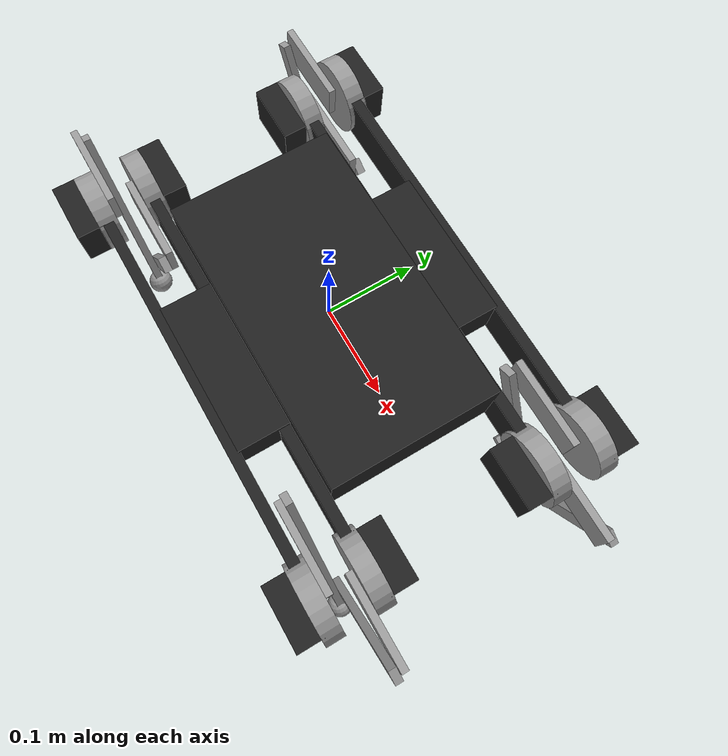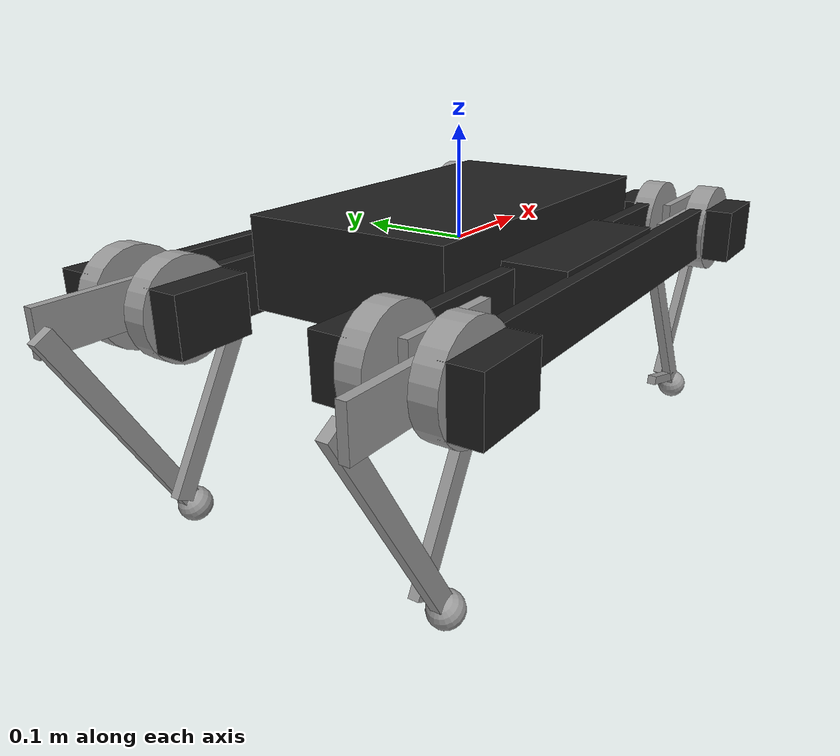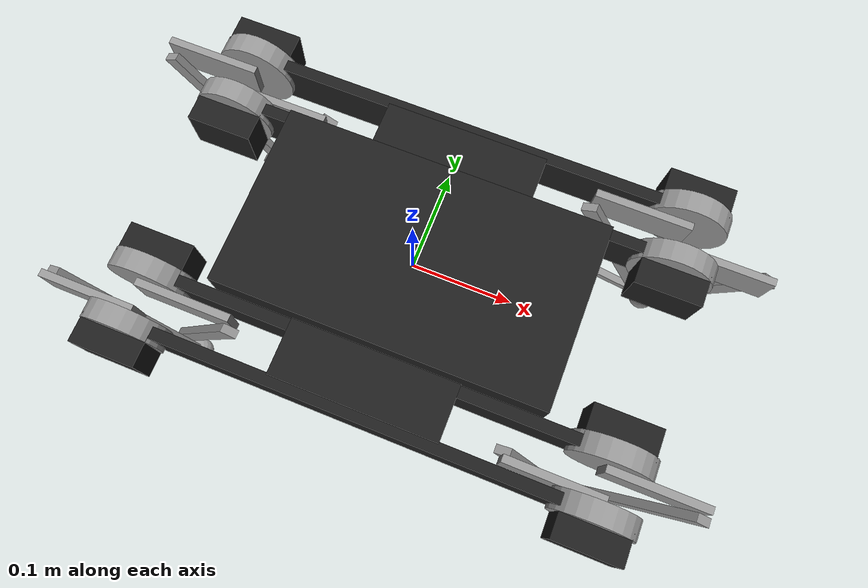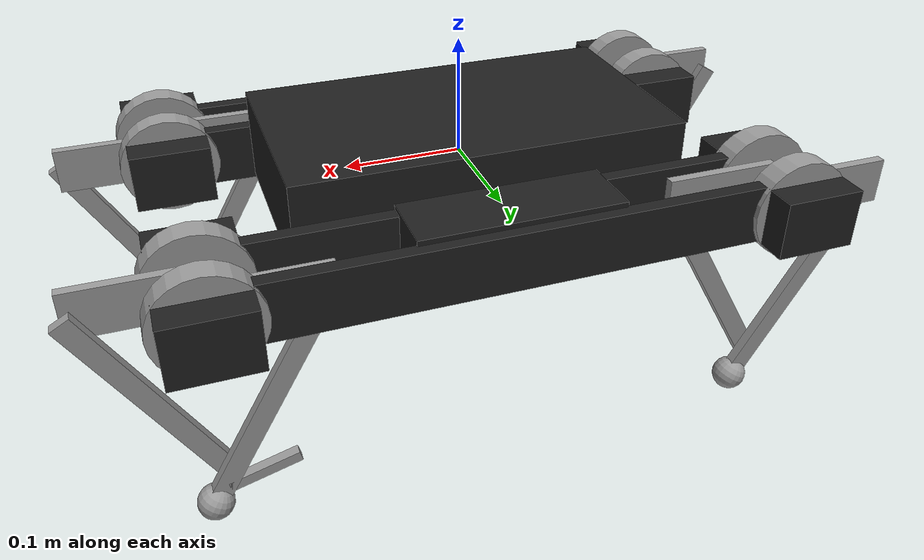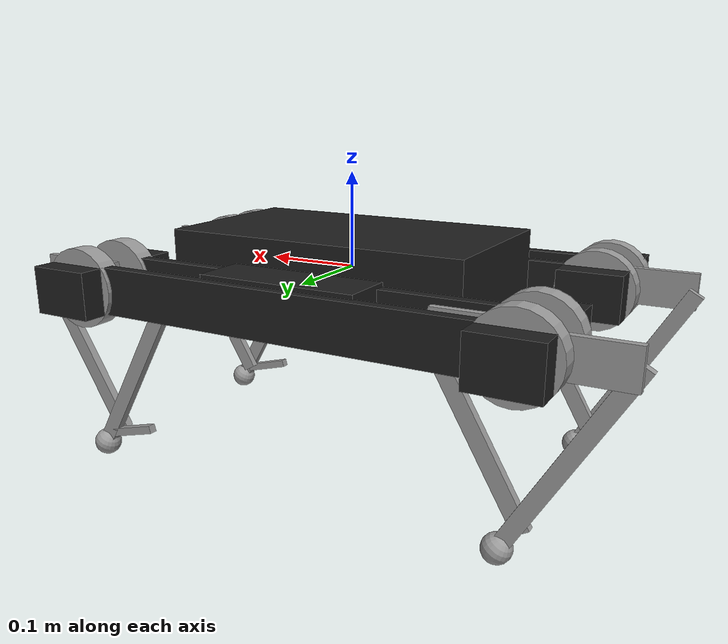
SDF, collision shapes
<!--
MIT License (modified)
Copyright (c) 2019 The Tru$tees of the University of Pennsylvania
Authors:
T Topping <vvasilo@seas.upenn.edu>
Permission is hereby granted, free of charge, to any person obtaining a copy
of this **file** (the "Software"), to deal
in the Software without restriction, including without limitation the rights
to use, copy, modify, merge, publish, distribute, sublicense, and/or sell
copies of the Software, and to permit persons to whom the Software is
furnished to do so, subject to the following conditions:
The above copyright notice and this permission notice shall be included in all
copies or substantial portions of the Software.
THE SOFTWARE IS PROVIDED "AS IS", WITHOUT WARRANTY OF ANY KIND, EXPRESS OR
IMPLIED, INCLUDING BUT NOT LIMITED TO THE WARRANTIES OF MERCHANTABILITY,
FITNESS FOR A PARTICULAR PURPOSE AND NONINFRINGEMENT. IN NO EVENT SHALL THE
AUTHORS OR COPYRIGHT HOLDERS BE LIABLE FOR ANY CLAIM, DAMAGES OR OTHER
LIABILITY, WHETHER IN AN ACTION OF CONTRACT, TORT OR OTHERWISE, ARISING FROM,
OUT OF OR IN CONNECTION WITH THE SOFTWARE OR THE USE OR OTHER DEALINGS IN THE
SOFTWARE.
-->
<sdf version="1.6">
 <model name="minitaur_constrained">
  <link name="base_chassis_link_dummy">
   <inertial>
    <pose>0 -0.001049 -0.005375 0 -0 0</pose>
    <mass>4.956</mass>
    <inertia>
     <ixx>0.0612569</ixx>
     <ixy>-2.18416e-20</ixy>
     <ixz>-5.76859e-20</ixz>
     <iyy>0.175533</iyy>
     <iyz>-6.82484e-05</iyz>
     <izz>0.225818</izz>
    </inertia>
   </inertial>
   <collision name="base_chassis_link_dummy_collision">
    <geometry><box><size>0.33 0.1855 0.08</size></box></geometry>
   </collision>
   <collision name="base_chassis_link_dummy_collision_1">
    <pose>0 0.1 -0.014 0 -0 0</pose>
    <geometry><box><size>0.17 0.1 0.05</size></box></geometry>
   </collision>
   <collision name="base_chassis_link_dummy_collision_2">
    <pose>0 -0.1 -0.014 0 -0 0</pose>
    <geometry><box><size>0.17 0.1 0.05</size></box></geometry>
   </collision>
   <collision name="base_chassis_link_dummy_fixed_joint_lump__base_chassis_link_collision_3">
    <geometry><box><size>0.33 0.1855 0.08</size></box></geometry>
   </collision>
   <collision name="base_chassis_link_dummy_fixed_joint_lump__base_chassis_link_collision_4">
    <pose>0 0.1 -0.014 0 -0 0</pose>
    <geometry><box><size>0.17 0.1 0.05</size></box></geometry>
   </collision>
   <collision name="base_chassis_link_dummy_fixed_joint_lump__base_chassis_link_collision_5">
    <pose>0 -0.1 -0.014 0 -0 0</pose>
    <geometry><box><size>0.17 0.1 0.05</size></box></geometry>
   </collision>
   <collision name="base_chassis_link_dummy_fixed_joint_lump__chassis_left_collision_6">
    <pose>0.2375 0.0775 -0.0185 0 -0 0</pose>
    <geometry><box><size>0.068 0.032 0.05</size></box></geometry>
   </collision>
   <collision name="base_chassis_link_dummy_fixed_joint_lump__chassis_left_collision_7">
    <pose>-0.2375 0.0775 -0.0185 0 -0 0</pose>
    <geometry><box><size>0.068 0.032 0.05</size></box></geometry>
   </collision>
   <collision name="base_chassis_link_dummy_fixed_joint_lump__chassis_right_collision_8">
    <pose>0.2375 -0.0775 -0.0185 0 -0 0</pose>
    <geometry><box><size>0.068 0.032 0.05</size></box></geometry>
   </collision>
   <collision name="base_chassis_link_dummy_fixed_joint_lump__chassis_right_collision_9">
    <pose>-0.2375 -0.0775 -0.0185 0 -0 0</pose>
    <geometry><box><size>0.068 0.032 0.05</size></box></geometry>
   </collision>
   <collision name="base_chassis_link_dummy_fixed_joint_lump__frame1_collision_10">
    <pose>0.0175 -0.154 -0.0185 0 -0 0</pose>
    <geometry><box><size>0.468 0.012 0.05</size></box></geometry>
   </collision>
   <collision name="base_chassis_link_dummy_fixed_joint_lump__frame2_collision_11">
    <pose>0.0175 0.154 -0.0185 0 -0 0</pose>
    <geometry><box><size>0.468 0.012 0.05</size></box></geometry>
   </collision>
   <collision name="base_chassis_link_dummy_fixed_joint_lump__frame3_collision_12">
    <pose>-0.0175 -0.099 -0.0185 0 -0 0</pose>
    <geometry><box><size>0.468 0.012 0.05</size></box></geometry>
   </collision>
   <collision name="base_chassis_link_dummy_fixed_joint_lump__frame4_collision_13">
    <pose>-0.0175 0.099 -0.0185 0 -0 0</pose>
    <geometry><box><size>0.468 0.012 0.05</size></box></geometry>
   </collision>
   <collision name="base_chassis_link_dummy_fixed_joint_lump__motor_back_leftL_bracket_link_collision_14">
    <pose>-0.2375 0.174 -0.0185 0 -0 0</pose>
    <geometry><box><size>0.068 0.032 0.05</size></box></geometry>
   </collision>
   <collision name="base_chassis_link_dummy_fixed_joint_lump__motor_back_rightR_bracket_link_collision_15">
    <pose>-0.2375 -0.174 -0.0185 0 -0 0</pose>
    <geometry><box><size>0.068 0.032 0.05</size></box></geometry>
   </collision>
   <collision name="base_chassis_link_dummy_fixed_joint_lump__motor_front_leftL_bracket_link_collision_16">
    <pose>0.2375 0.174 -0.0185 0 -0 0</pose>
    <geometry><box><size>0.068 0.032 0.05</size></box></geometry>
   </collision>
   <collision name="base_chassis_link_dummy_fixed_joint_lump__motor_front_rightR_bracket_link_collision_17">
    <pose>0.2375 -0.174 -0.0185 0 -0 0</pose>
    <geometry><box><size>0.068 0.032 0.05</size></box></geometry>
   </collision>
   <visual name="base_chassis_link_dummy_visual">
    <geometry><box><size>0.33 0.1855 0.08</size></box></geometry>
    <material>
     <script><name>Gazebo/FlatBlack</name><uri>file://media/materials/scripts/gazebo.material</uri></script>
    </material>
   </visual>
   <visual name="base_chassis_link_dummy_visual_1">
    <pose>0 0.1 -0.014 0 -0 0</pose>
    <geometry><box><size>0.17 0.1 0.05</size></box></geometry>
    <material>
     <script><name>Gazebo/FlatBlack</name><uri>file://media/materials/scripts/gazebo.material</uri></script>
    </material>
   </visual>
   <visual name="base_chassis_link_dummy_visual_2">
    <pose>0 -0.1 -0.014 0 -0 0</pose>
    <geometry><box><size>0.17 0.1 0.05</size></box></geometry>
    <material>
     <script><name>Gazebo/FlatBlack</name><uri>file://media/materials/scripts/gazebo.material</uri></script>
    </material>
   </visual>
   <visual name="base_chassis_link_dummy_fixed_joint_lump__base_chassis_link_visual_3">
    <geometry><box><size>0.33 0.1855 0.08</size></box></geometry>
    <material>
     <script><name>Gazebo/FlatBlack</name><uri>file://media/materials/scripts/gazebo.material</uri></script>
    </material>
   </visual>
   <visual name="base_chassis_link_dummy_fixed_joint_lump__base_chassis_link_visual_4">
    <pose>0 0.1 -0.014 0 -0 0</pose>
    <geometry><box><size>0.17 0.1 0.05</size></box></geometry>
    <material>
     <script><name>Gazebo/FlatBlack</name><uri>file://media/materials/scripts/gazebo.material</uri></script>
    </material>
   </visual>
   <visual name="base_chassis_link_dummy_fixed_joint_lump__base_chassis_link_visual_5">
    <pose>0 -0.1 -0.014 0 -0 0</pose>
    <geometry><box><size>0.17 0.1 0.05</size></box></geometry>
    <material>
     <script><name>Gazebo/FlatBlack</name><uri>file://media/materials/scripts/gazebo.material</uri></script>
    </material>
   </visual>
   <visual name="base_chassis_link_dummy_fixed_joint_lump__chassis_left_visual_6">
    <pose>0.2375 0.0775 -0.0185 0 -0 0</pose>
    <geometry><box><size>0.068 0.032 0.05</size></box></geometry>
    <material>
     <script><name>Gazebo/Black</name><uri>file://media/materials/scripts/gazebo.material</uri></script>
    </material>
   </visual>
   <visual name="base_chassis_link_dummy_fixed_joint_lump__chassis_left_visual_7">
    <pose>-0.2375 0.0775 -0.0185 0 -0 0</pose>
    <geometry><box><size>0.068 0.032 0.05</size></box></geometry>
    <material>
     <script><name>Gazebo/Black</name><uri>file://media/materials/scripts/gazebo.material</uri></script>
    </material>
   </visual>
   <visual name="base_chassis_link_dummy_fixed_joint_lump__chassis_right_visual_8">
    <pose>0.2375 -0.0775 -0.0185 0 -0 0</pose>
    <geometry><box><size>0.068 0.032 0.05</size></box></geometry>
    <material>
     <script><name>Gazebo/Black</name><uri>file://media/materials/scripts/gazebo.material</uri></script>
    </material>
   </visual>
   <visual name="base_chassis_link_dummy_fixed_joint_lump__chassis_right_visual_9">
    <pose>-0.2375 -0.0775 -0.0185 0 -0 0</pose>
    <geometry><box><size>0.068 0.032 0.05</size></box></geometry>
    <material>
     <script><name>Gazebo/Black</name><uri>file://media/materials/scripts/gazebo.material</uri></script>
    </material>
   </visual>
   <visual name="base_chassis_link_dummy_fixed_joint_lump__frame1_visual_10">
    <pose>0.0175 -0.154 -0.0185 0 -0 0</pose>
    <geometry><box><size>0.468 0.012 0.05</size></box></geometry>
    <material>
     <script><name>Gazebo/Grey</name><uri>file://media/materials/scripts/gazebo.material</uri></script>
    </material>
   </visual>
   <visual name="base_chassis_link_dummy_fixed_joint_lump__frame2_visual_11">
    <pose>0.0175 0.154 -0.0185 0 -0 0</pose>
    <geometry><box><size>0.468 0.012 0.05</size></box></geometry>
    <material>
     <script><name>Gazebo/Grey</name><uri>file://media/materials/scripts/gazebo.material</uri></script>
    </material>
   </visual>
   <visual name="base_chassis_link_dummy_fixed_joint_lump__frame3_visual_12">
    <pose>-0.0175 -0.099 -0.0185 0 -0 0</pose>
    <geometry><box><size>0.468 0.012 0.05</size></box></geometry>
    <material>
     <script><name>Gazebo/Grey</name><uri>file://media/materials/scripts/gazebo.material</uri></script>
    </material>
   </visual>
   <visual name="base_chassis_link_dummy_fixed_joint_lump__frame4_visual_13">
    <pose>-0.0175 0.099 -0.0185 0 -0 0</pose>
    <geometry><box><size>0.468 0.012 0.05</size></box></geometry>
    <material>
     <script><name>Gazebo/Grey</name><uri>file://media/materials/scripts/gazebo.material</uri></script>
    </material>
   </visual>
   <visual name="base_chassis_link_dummy_fixed_joint_lump__motor_back_leftL_bracket_link_visual_14">
    <pose>-0.2375 0.174 -0.0185 0 -0 0</pose>
    <geometry><box><size>0.068 0.032 0.05</size></box></geometry>
    <material>
     <script><name>Gazebo/Black</name><uri>file://media/materials/scripts/gazebo.material</uri></script>
    </material>
   </visual>
   <visual name="base_chassis_link_dummy_fixed_joint_lump__motor_back_rightR_bracket_link_visual_15">
    <pose>-0.2375 -0.174 -0.0185 0 -0 0</pose>
    <geometry><box><size>0.068 0.032 0.05</size></box></geometry>
    <material>
     <script><name>Gazebo/Black</name><uri>file://media/materials/scripts/gazebo.material</uri></script>
    </material>
   </visual>
   <visual name="base_chassis_link_dummy_fixed_joint_lump__motor_front_leftL_bracket_link_visual_16">
    <pose>0.2375 0.174 -0.0185 0 -0 0</pose>
    <geometry><box><size>0.068 0.032 0.05</size></box></geometry>
    <material>
     <script><name>Gazebo/Black</name><uri>file://media/materials/scripts/gazebo.material</uri></script>
    </material>
   </visual>
   <visual name="base_chassis_link_dummy_fixed_joint_lump__motor_front_rightR_bracket_link_visual_17">
    <pose>0.2375 -0.174 -0.0185 0 -0 0</pose>
    <geometry><box><size>0.068 0.032 0.05</size></box></geometry>
    <material>
     <script><name>Gazebo/Black</name><uri>file://media/materials/scripts/gazebo.material</uri></script>
    </material>
   </visual>
  </link>
  <link name="motor_front_leftR_link">
   <pose>0.2375 0.099 -0.0185 1.57075 1.57075 0</pose>
   <inertial>
    <pose>0 0.0075 -0.002417 0 -0 0</pose>
    <mass>0.3</mass>
    <inertia>
     <ixx>0.000245875</ixx>
     <ixy>0</ixy>
     <ixz>0</ixz>
     <iyy>0.000126333</iyy>
     <iyz>2.71857e-05</iyz>
     <izz>0.000344223</izz>
    </inertia>
   </inertial>
   <collision name="motor_front_leftR_link_collision">
    <geometry><cylinder><length>0.021</length><radius>0.0425</radius></cylinder></geometry>
   </collision>
   <collision name="motor_front_leftR_link_fixed_joint_lump__upper_leg_front_leftR_link_collision_1">
    <pose>0 0.045 -0.0145 -1.57075 0 0</pose>
    <geometry><box><size>0.039 0.008 0.1</size></box></geometry>
   </collision>
   <visual name="motor_front_leftR_link_visual">
    <geometry>
     <mesh><scale>100 100 100</scale><uri>model://minitaur_constrained/../../meshes/tmotor3.dae</uri></mesh>
    </geometry>
   </visual>
   <visual name="motor_front_leftR_link_fixed_joint_lump__upper_leg_front_leftR_link_visual_1">
    <pose>0 0.045 -0.0145 -1.57075 0 0</pose>
    <geometry><box><size>0.039 0.008 0.1</size></box></geometry>
    <material>
     <script><name>Gazebo/Grey</name><uri>file://media/materials/scripts/gazebo.material</uri></script>
    </material>
   </visual>
  </link>
  <joint name="1" type="revolute">
   <child>motor_front_leftR_link</child>
   <parent>base_chassis_link_dummy</parent>
   <axis>
    <xyz>4.6e-05 -1 0</xyz>
    <limit><lower>-1e+16</lower><upper>1e+16</upper></limit>
    <dynamics><spring_reference>0</spring_reference><spring_stiffness>0</spring_stiffness></dynamics>
    <use_parent_model_frame>1</use_parent_model_frame>
   </axis>
  </joint>
  <link name="lower_leg_front_leftR_link">
   <pose>0.332499 0.122002 -0.018496 -3.14159 -0.523343 -3.14159</pose>
   <inertial>
    <pose>0 0 0.1 0 -0 0</pose>
    <mass>0.05</mass>
    <inertia>
     <ixx>0.00032459</ixx>
     <ixy>0</ixy>
     <ixz>0</ixz>
     <iyy>0.00032637</iyy>
     <iyz>0</iyz>
     <izz>2.178e-06</izz>
    </inertia>
   </inertial>
   <collision name="lower_leg_front_leftR_link_collision">
    <pose>0 0 0.1 0 -0 0</pose>
    <geometry><box><size>0.017 0.009 0.2</size></box></geometry>
    <surface>
     <bounce><restitution_coefficient>0</restitution_coefficient><threshold>1e+06</threshold></bounce>
     <friction>
      <torsional><coefficient>0.05</coefficient></torsional>
      <bullet><rolling_friction>0.05</rolling_friction></bullet>
     </friction>
     <contact>
      <ode><kp>3000</kp><kd>100</kd></ode>
      <bullet>
       <kp>3000</kp>
       <kd>100</kd>
       <split_impulse>1</split_impulse>
       <split_impulse_penetration_threshold>-0.01</split_impulse_penetration_threshold>
      </bullet>
     </contact>
    </surface>
   </collision>
   <visual name="lower_leg_front_leftR_link_visual">
    <pose>0 0 0.1 0 -0 0</pose>
    <geometry><box><size>0.017 0.009 0.2</size></box></geometry>
    <material>
     <script><name>Gazebo/Grey</name><uri>file://media/materials/scripts/gazebo.material</uri></script>
    </material>
   </visual>
  </link>
  <joint name="9" type="universal">
   <child>lower_leg_front_leftR_link</child>
   <parent>motor_front_leftR_link</parent>
   <axis>
    <xyz>-0 1 -0</xyz>
    <limit><lower>-2.000</lower><upper>1.000</upper></limit>
    <dynamics><spring_reference>0</spring_reference><spring_stiffness>0</spring_stiffness></dynamics>
    <use_parent_model_frame>1</use_parent_model_frame>
   </axis>
   <axis2>
    <xyz>1 0 0</xyz>
    <limit><lower>-0.02</lower><upper>0.02</upper></limit>
    <dynamics><spring_reference>0</spring_reference><spring_stiffness>0</spring_stiffness></dynamics>
    <use_parent_model_frame>1</use_parent_model_frame>
   </axis2>
  </joint>
  <link name="motor_back_leftR_link">
   <pose>-0.2375 0.099 -0.0185 1.57075 1.57075 0</pose>
   <inertial>
    <pose>0 0.0075 -0.002417 0 -0 0</pose>
    <mass>0.3</mass>
    <inertia>
     <ixx>0.000245875</ixx>
     <ixy>0</ixy>
     <ixz>0</ixz>
     <iyy>0.000126333</iyy>
     <iyz>2.71857e-05</iyz>
     <izz>0.000344223</izz>
    </inertia>
   </inertial>
   <collision name="motor_back_leftR_link_collision">
    <geometry><cylinder><length>0.021</length><radius>0.0425</radius></cylinder></geometry>
   </collision>
   <collision name="motor_back_leftR_link_fixed_joint_lump__upper_leg_back_leftR_link_collision_1">
    <pose>0 0.045 -0.0145 -1.57075 0 0</pose>
    <geometry><box><size>0.039 0.008 0.1</size></box></geometry>
   </collision>
   <visual name="motor_back_leftR_link_visual">
    <geometry>
     <mesh><scale>100 100 100</scale><uri>model://minitaur_constrained/../../meshes/tmotor3.dae</uri></mesh>
    </geometry>
   </visual>
   <visual name="motor_back_leftR_link_fixed_joint_lump__upper_leg_back_leftR_link_visual_1">
    <pose>0 0.045 -0.0145 -1.57075 0 0</pose>
    <geometry><box><size>0.039 0.008 0.1</size></box></geometry>
    <material>
     <script><name>Gazebo/Grey</name><uri>file://media/materials/scripts/gazebo.material</uri></script>
    </material>
   </visual>
  </link>
  <joint name="3" type="revolute">
   <child>motor_back_leftR_link</child>
   <parent>base_chassis_link_dummy</parent>
   <axis>
    <xyz>4.6e-05 -1 0</xyz>
    <limit><lower>-1e+16</lower><upper>1e+16</upper></limit>
    <dynamics><spring_reference>0</spring_reference><spring_stiffness>0</spring_stiffness></dynamics>
    <use_parent_model_frame>1</use_parent_model_frame>
   </axis>
  </joint>
  <link name="lower_leg_back_leftR_link">
   <pose>-0.142501 0.122002 -0.018496 -3.14159 -0.523343 -3.14159</pose>
   <inertial>
    <pose>0 0 0.1 0 -0 0</pose>
    <mass>0.05</mass>
    <inertia>
     <ixx>0.00032459</ixx>
     <ixy>0</ixy>
     <ixz>0</ixz>
     <iyy>0.00032637</iyy>
     <iyz>0</iyz>
     <izz>2.178e-06</izz>
    </inertia>
   </inertial>
   <collision name="lower_leg_back_leftR_link_collision">
    <pose>0 0 0.1 0 -0 0</pose>
    <geometry><box><size>0.017 0.009 0.2</size></box></geometry>
    <surface>
     <bounce><restitution_coefficient>0</restitution_coefficient><threshold>1e+06</threshold></bounce>
     <friction>
      <torsional><coefficient>0.05</coefficient></torsional>
      <bullet><rolling_friction>0.05</rolling_friction></bullet>
     </friction>
     <contact>
      <ode><kp>3000</kp><kd>100</kd></ode>
      <bullet>
       <kp>3000</kp>
       <kd>100</kd>
       <split_impulse>1</split_impulse>
       <split_impulse_penetration_threshold>-0.01</split_impulse_penetration_threshold>
      </bullet>
     </contact>
    </surface>
   </collision>
   <visual name="lower_leg_back_leftR_link_visual">
    <pose>0 0 0.1 0 -0 0</pose>
    <geometry><box><size>0.017 0.009 0.2</size></box></geometry>
    <material>
     <script><name>Gazebo/Grey</name><uri>file://media/materials/scripts/gazebo.material</uri></script>
    </material>
   </visual>
  </link>
  <joint name="11" type="universal">
   <child>lower_leg_back_leftR_link</child>
   <parent>motor_back_leftR_link</parent>
   <axis>
    <xyz>-0 1 -0</xyz>
    <limit><lower>-2.000</lower><upper>1.000</upper></limit>
    <dynamics><spring_reference>0</spring_reference><spring_stiffness>0</spring_stiffness></dynamics>
    <use_parent_model_frame>1</use_parent_model_frame>
   </axis>
   <axis2>
    <xyz>1 0 0</xyz>
    <limit><lower>-0.02</lower><upper>0.02</upper></limit>
    <dynamics><spring_reference>0</spring_reference><spring_stiffness>0</spring_stiffness></dynamics>
    <use_parent_model_frame>1</use_parent_model_frame>
   </axis2>
  </joint>
  <link name="motor_front_rightL_link">
   <pose>0.2375 -0.099 -0.0185 1.57075 1.57075 0</pose>
   <inertial>
    <pose>0 0.0075 0.002417 0 -0 0</pose>
    <mass>0.3</mass>
    <inertia>
     <ixx>0.000245875</ixx>
     <ixy>0</ixy>
     <ixz>0</ixz>
     <iyy>0.000126333</iyy>
     <iyz>-2.71893e-05</iyz>
     <izz>0.000344223</izz>
    </inertia>
   </inertial>
   <collision name="motor_front_rightL_link_collision">
    <geometry><cylinder><length>0.021</length><radius>0.0425</radius></cylinder></geometry>
   </collision>
   <collision name="motor_front_rightL_link_fixed_joint_lump__upper_leg_front_rightL_link_collision_1">
    <pose>0 0.045 0.0145 -1.57075 0 0</pose>
    <geometry><box><size>0.039 0.008 0.1</size></box></geometry>
   </collision>
   <visual name="motor_front_rightL_link_visual">
    <geometry>
     <mesh><scale>100 100 100</scale><uri>model://minitaur_constrained/../../meshes/tmotor3.dae</uri></mesh>
    </geometry>
   </visual>
   <visual name="motor_front_rightL_link_fixed_joint_lump__upper_leg_front_rightL_link_visual_1">
    <pose>0 0.045 0.0145 -1.57075 0 0</pose>
    <geometry><box><size>0.039 0.008 0.1</size></box></geometry>
    <material>
     <script><name>Gazebo/Grey</name><uri>file://media/materials/scripts/gazebo.material</uri></script>
    </material>
   </visual>
  </link>
  <joint name="4" type="revolute">
   <child>motor_front_rightL_link</child>
   <parent>base_chassis_link_dummy</parent>
   <axis>
    <xyz>-4.6e-05 1 -0</xyz>
    <limit><lower>-1e+16</lower><upper>1e+16</upper></limit>
    <dynamics><spring_reference>0</spring_reference><spring_stiffness>0</spring_stiffness></dynamics>
    <use_parent_model_frame>1</use_parent_model_frame>
   </axis>
  </joint>
  <link name="lower_leg_front_rightL_link">
   <pose>0.332501 -0.121998 -0.018496 -3.14159 -0.523343 -3.14159</pose>
   <inertial>
    <pose>0 0 0.1 0 -0 0</pose>
    <mass>0.05</mass>
    <inertia>
     <ixx>0.00032459</ixx>
     <ixy>0</ixy>
     <ixz>0</ixz>
     <iyy>0.00032637</iyy>
     <iyz>0</iyz>
     <izz>2.178e-06</izz>
    </inertia>
   </inertial>
   <collision name="lower_leg_front_rightL_link_collision">
    <pose>0 0 0.1 0 -0 0</pose>
    <geometry><box><size>0.017 0.009 0.2</size></box></geometry>
    <surface>
     <bounce><restitution_coefficient>0</restitution_coefficient><threshold>1e+06</threshold></bounce>
     <friction>
      <torsional><coefficient>0.05</coefficient></torsional>
      <bullet><rolling_friction>0.05</rolling_friction></bullet>
     </friction>
     <contact>
      <ode><kp>3000</kp><kd>100</kd></ode>
      <bullet>
       <kp>3000</kp>
       <kd>100</kd>
       <split_impulse>1</split_impulse>
       <split_impulse_penetration_threshold>-0.01</split_impulse_penetration_threshold>
      </bullet>
     </contact>
    </surface>
   </collision>
   <visual name="lower_leg_front_rightL_link_visual">
    <pose>0 0 0.1 0 -0 0</pose>
    <geometry><box><size>0.017 0.009 0.2</size></box></geometry>
    <material>
     <script><name>Gazebo/Grey</name><uri>file://media/materials/scripts/gazebo.material</uri></script>
    </material>
   </visual>
  </link>
  <joint name="12" type="universal">
   <child>lower_leg_front_rightL_link</child>
   <parent>motor_front_rightL_link</parent>
   <axis>
    <xyz>0 -1 0</xyz>
    <limit><lower>-1.000</lower><upper>2.000</upper></limit>
    <dynamics><spring_reference>0</spring_reference><spring_stiffness>0</spring_stiffness></dynamics>
    <use_parent_model_frame>1</use_parent_model_frame>
   </axis>
   <axis2>
    <xyz>-1 0 0</xyz>
    <limit><lower>-0.02</lower><upper>0.02</upper></limit>
    <dynamics><spring_reference>0</spring_reference><spring_stiffness>0</spring_stiffness></dynamics>
    <use_parent_model_frame>1</use_parent_model_frame>
   </axis2>
  </joint>
  <link name="motor_back_rightL_link">
   <pose>-0.2375 -0.099 -0.0185 1.57075 1.57075 0</pose>
   <inertial>
    <pose>0 0.0075 0.002417 0 -0 0</pose>
    <mass>0.3</mass>
    <inertia>
     <ixx>0.000245875</ixx>
     <ixy>0</ixy>
     <ixz>0</ixz>
     <iyy>0.000126333</iyy>
     <iyz>-2.71893e-05</iyz>
     <izz>0.000344223</izz>
    </inertia>
   </inertial>
   <collision name="motor_back_rightL_link_collision">
    <geometry><cylinder><length>0.021</length><radius>0.0425</radius></cylinder></geometry>
   </collision>
   <collision name="motor_back_rightL_link_fixed_joint_lump__upper_leg_back_rightL_link_collision_1">
    <pose>0 0.045 0.0145 -1.57075 0 0</pose>
    <geometry><box><size>0.039 0.008 0.1</size></box></geometry>
   </collision>
   <visual name="motor_back_rightL_link_visual">
    <geometry>
     <mesh><scale>100 100 100</scale><uri>model://minitaur_constrained/../../meshes/tmotor3.dae</uri></mesh>
    </geometry>
   </visual>
   <visual name="motor_back_rightL_link_fixed_joint_lump__upper_leg_back_rightL_link_visual_1">
    <pose>0 0.045 0.0145 -1.57075 0 0</pose>
    <geometry><box><size>0.039 0.008 0.1</size></box></geometry>
    <material>
     <script><name>Gazebo/Grey</name><uri>file://media/materials/scripts/gazebo.material</uri></script>
    </material>
   </visual>
  </link>
  <joint name="6" type="revolute">
   <child>motor_back_rightL_link</child>
   <parent>base_chassis_link_dummy</parent>
   <axis>
    <xyz>-4.6e-05 1 -0</xyz>
    <limit><lower>-1e+16</lower><upper>1e+16</upper></limit>
    <dynamics><spring_reference>0</spring_reference><spring_stiffness>0</spring_stiffness></dynamics>
    <use_parent_model_frame>1</use_parent_model_frame>
   </axis>
  </joint>
  <link name="lower_leg_back_rightL_link">
   <pose>-0.142499 -0.121998 -0.018496 -3.14159 -0.523343 -3.14159</pose>
   <inertial>
    <pose>0 0 0.1 0 -0 0</pose>
    <mass>0.05</mass>
    <inertia>
     <ixx>0.00032459</ixx>
     <ixy>0</ixy>
     <ixz>0</ixz>
     <iyy>0.00032637</iyy>
     <iyz>0</iyz>
     <izz>2.178e-06</izz>
    </inertia>
   </inertial>
   <collision name="lower_leg_back_rightL_link_collision">
    <pose>0 0 0.1 0 -0 0</pose>
    <geometry><box><size>0.017 0.009 0.2</size></box></geometry>
    <surface>
     <bounce><restitution_coefficient>0</restitution_coefficient><threshold>1e+06</threshold></bounce>
     <friction>
      <torsional><coefficient>0.05</coefficient></torsional>
      <bullet><rolling_friction>0.05</rolling_friction></bullet>
     </friction>
     <contact>
      <ode><kp>3000</kp><kd>100</kd></ode>
      <bullet>
       <kp>3000</kp>
       <kd>100</kd>
       <split_impulse>1</split_impulse>
       <split_impulse_penetration_threshold>-0.01</split_impulse_penetration_threshold>
      </bullet>
     </contact>
    </surface>
   </collision>
   <visual name="lower_leg_back_rightL_link_visual">
    <pose>0 0 0.1 0 -0 0</pose>
    <geometry><box><size>0.017 0.009 0.2</size></box></geometry>
    <material>
     <script><name>Gazebo/Grey</name><uri>file://media/materials/scripts/gazebo.material</uri></script>
    </material>
   </visual>
  </link>
  <joint name="14" type="universal">
   <child>lower_leg_back_rightL_link</child>
   <parent>motor_back_rightL_link</parent>
   <axis>
    <xyz>0 -1 0</xyz>
    <limit><lower>-1.000</lower><upper>2.000</upper></limit>
    <dynamics><spring_reference>0</spring_reference><spring_stiffness>0</spring_stiffness></dynamics>
    <use_parent_model_frame>1</use_parent_model_frame>
   </axis>
   <axis2>
    <xyz>-1 0 0</xyz>
    <limit><lower>-0.02</lower><upper>0.02</upper></limit>
    <dynamics><spring_reference>0</spring_reference><spring_stiffness>0</spring_stiffness></dynamics>
    <use_parent_model_frame>1</use_parent_model_frame>
   </axis2>
  </joint>
  <link name="motor_back_leftL_link">
   <pose>-0.2375 0.154 -0.0185 1.57075 -1.57075 0</pose>
   <inertial>
    <pose>0 0.0075 0.002417 0 -0 0</pose>
    <mass>0.3</mass>
    <inertia>
     <ixx>0.000245875</ixx>
     <ixy>0</ixy>
     <ixz>0</ixz>
     <iyy>0.000126333</iyy>
     <iyz>-2.71893e-05</iyz>
     <izz>0.000344223</izz>
    </inertia>
   </inertial>
   <collision name="motor_back_leftL_link_collision">
    <geometry><cylinder><length>0.021</length><radius>0.0425</radius></cylinder></geometry>
   </collision>
   <collision name="motor_back_leftL_link_fixed_joint_lump__upper_leg_back_leftL_link_collision_1">
    <pose>0 0.045 0.0145 -1.57075 0 0</pose>
    <geometry><box><size>0.039 0.008 0.1</size></box></geometry>
   </collision>
   <visual name="motor_back_leftL_link_visual">
    <geometry>
     <mesh><scale>100 100 100</scale><uri>model://minitaur_constrained/../../meshes/tmotor3.dae</uri></mesh>
    </geometry>
   </visual>
   <visual name="motor_back_leftL_link_fixed_joint_lump__upper_leg_back_leftL_link_visual_1">
    <pose>0 0.045 0.0145 -1.57075 0 0</pose>
    <geometry><box><size>0.039 0.008 0.1</size></box></geometry>
    <material>
     <script><name>Gazebo/Grey</name><uri>file://media/materials/scripts/gazebo.material</uri></script>
    </material>
   </visual>
  </link>
  <joint name="2" type="revolute">
   <child>motor_back_leftL_link</child>
   <parent>base_chassis_link_dummy</parent>
   <axis>
    <xyz>4.6e-05 1 -0</xyz>
    <limit><lower>-1e+16</lower><upper>1e+16</upper></limit>
    <dynamics><spring_reference>0</spring_reference><spring_stiffness>0</spring_stiffness></dynamics>
    <use_parent_model_frame>1</use_parent_model_frame>
   </axis>
  </joint>
  <link name="lower_leg_back_leftL_link">
   <pose>-0.332501 0.131002 -0.018496 -3.14159 0.523343 3.14159</pose>
   <inertial>
    <pose>0 0 0.144667 0 -0 0</pose>
    <mass>0.06</mass>
    <inertia>
     <ixx>0.000477723</ixx>
     <ixy>0</ixy>
     <ixz>0</ixz>
     <iyy>0.000479503</iyy>
     <iyz>0</iyz>
     <izz>2.7178e-05</izz>
    </inertia>
   </inertial>
   <collision name="lower_leg_back_leftL_link_collision">
    <pose>0 0 0.11 0 -0 0</pose>
    <geometry><box><size>0.017 0.009 0.22</size></box></geometry>
    <surface>
     <bounce><restitution_coefficient>0</restitution_coefficient><threshold>1e+06</threshold></bounce>
     <friction>
      <torsional><coefficient>0.05</coefficient></torsional>
      <bullet><rolling_friction>0.05</rolling_friction></bullet>
     </friction>
     <contact>
      <ode><kp>3000</kp><kd>100</kd></ode>
      <bullet>
       <kp>3000</kp>
       <kd>100</kd>
       <split_impulse>1</split_impulse>
       <split_impulse_penetration_threshold>-0.01</split_impulse_penetration_threshold>
      </bullet>
     </contact>
    </surface>
   </collision>
   <collision name="toe1_collision">
    <pose>0 0 0.22 0 -0 0</pose>
    <geometry><sphere><radius>0.015</radius></sphere></geometry>
    <surface>
     <bounce><restitution_coefficient>0</restitution_coefficient><threshold>1e+06</threshold></bounce>
     <friction>
      <torsional><coefficient>1.0</coefficient></torsional>
      <ode><mu>1.0</mu><mu2>1.0</mu2></ode>
      <bullet><rolling_friction>1.0</rolling_friction><friction2>1.0</friction2></bullet>
     </friction>
     <contact>
      <ode><kp>300000</kp><kd>1000</kd></ode>
      <bullet>
       <kp>300000</kp>
       <kd>1000</kd>
       <split_impulse>1</split_impulse>
       <split_impulse_penetration_threshold>-0.01</split_impulse_penetration_threshold>
      </bullet>
     </contact>
    </surface>
   </collision>
   <sensor name="toe1_contact" type="contact">
    <plugin name="toe1_plugin" filename="libcontact.so"/>
    <contact><collision>toe1_collision</collision></contact>
   </sensor>
   <visual name="lower_leg_back_leftL_link_visual">
    <pose>0 0 0.11 0 -0 0</pose>
    <geometry><box><size>0.017 0.009 0.22</size></box></geometry>
    <material>
     <script><name>Gazebo/Grey</name><uri>file://media/materials/scripts/gazebo.material</uri></script>
    </material>
   </visual>
   <visual name="lower_leg_back_leftL_link_fixed_joint_lump__toe2_visual_1">
    <pose>0 0 0.22 0 -0 0</pose>
    <geometry><sphere><radius>0.015</radius></sphere></geometry>
    <material>
     <script><name>Gazebo/Black</name><uri>file://media/materials/scripts/gazebo.material</uri></script>
    </material>
   </visual>
  </link>
  <joint name="10" type="universal">
   <child>lower_leg_back_leftL_link</child>
   <parent>motor_back_leftL_link</parent>
   <axis>
    <xyz>-0 -1 0</xyz>
    <limit><lower>-2.000</lower><upper>1.000</upper></limit>
    <dynamics><spring_reference>0</spring_reference><spring_stiffness>0</spring_stiffness></dynamics>
    <use_parent_model_frame>1</use_parent_model_frame>
   </axis>
   <axis2>
    <xyz>-1 0 0</xyz>
    <limit><lower>-0.02</lower><upper>0.02</upper></limit>
    <dynamics><spring_reference>0</spring_reference><spring_stiffness>0</spring_stiffness></dynamics>
    <use_parent_model_frame>1</use_parent_model_frame>
   </axis2>
  </joint>
  <link name="motor_back_rightR_link">
   <pose>-0.2375 -0.154 -0.0185 1.57075 -1.57075 0</pose>
   <inertial>
    <pose>0 0.0075 -0.002417 0 -0 0</pose>
    <mass>0.3</mass>
    <inertia>
     <ixx>0.000245875</ixx>
     <ixy>0</ixy>
     <ixz>0</ixz>
     <iyy>0.000126333</iyy>
     <iyz>2.71857e-05</iyz>
     <izz>0.000344223</izz>
    </inertia>
   </inertial>
   <collision name="motor_back_rightR_link_collision">
    <geometry><cylinder><length>0.021</length><radius>0.0425</radius></cylinder></geometry>
   </collision>
   <collision name="motor_back_rightR_link_fixed_joint_lump__upper_leg_back_rightR_link_collision_1">
    <pose>0 0.045 -0.0145 -1.57075 0 0</pose>
    <geometry><box><size>0.039 0.008 0.1</size></box></geometry>
   </collision>
   <visual name="motor_back_rightR_link_visual">
    <geometry>
     <mesh><scale>100 100 100</scale><uri>model://minitaur_constrained/../../meshes/tmotor3.dae</uri></mesh>
    </geometry>
   </visual>
   <visual name="motor_back_rightR_link_fixed_joint_lump__upper_leg_back_rightR_link_visual_1">
    <pose>0 0.045 -0.0145 -1.57075 0 0</pose>
    <geometry><box><size>0.039 0.008 0.1</size></box></geometry>
    <material>
     <script><name>Gazebo/Grey</name><uri>file://media/materials/scripts/gazebo.material</uri></script>
    </material>
   </visual>
  </link>
  <joint name="7" type="revolute">
   <child>motor_back_rightR_link</child>
   <parent>base_chassis_link_dummy</parent>
   <axis>
    <xyz>-4.6e-05 -1 0</xyz>
    <limit><lower>-1e+16</lower><upper>1e+16</upper></limit>
    <dynamics><spring_reference>0</spring_reference><spring_stiffness>0</spring_stiffness></dynamics>
    <use_parent_model_frame>1</use_parent_model_frame>
   </axis>
  </joint>
  <link name="lower_leg_back_rightR_link">
   <pose>-0.332499 -0.130998 -0.018496 -3.14159 0.523343 3.14159</pose>
   <inertial>
    <pose>0 0 0.144667 0 -0 0</pose>
    <mass>0.06</mass>
    <inertia>
     <ixx>0.000477723</ixx>
     <ixy>0</ixy>
     <ixz>0</ixz>
     <iyy>0.000479503</iyy>
     <iyz>0</iyz>
     <izz>2.7178e-05</izz>
    </inertia>
   </inertial>
   <collision name="lower_leg_back_rightR_link_collision">
    <pose>0 0 0.11 0 -0 0</pose>
    <geometry><box><size>0.017 0.009 0.22</size></box></geometry>
    <surface>
     <bounce><restitution_coefficient>0</restitution_coefficient><threshold>1e+06</threshold></bounce>
     <friction>
      <torsional><coefficient>0.05</coefficient></torsional>
      <bullet><rolling_friction>0.05</rolling_friction></bullet>
     </friction>
     <contact>
      <ode><kp>3000</kp><kd>100</kd></ode>
      <bullet>
       <kp>3000</kp>
       <kd>100</kd>
       <split_impulse>1</split_impulse>
       <split_impulse_penetration_threshold>-0.01</split_impulse_penetration_threshold>
      </bullet>
     </contact>
    </surface>
   </collision>
   <collision name="toe3_collision">
    <pose>0 0 0.22 0 -0 0</pose>
    <geometry><sphere><radius>0.015</radius></sphere></geometry>
    <surface>
     <bounce><restitution_coefficient>0</restitution_coefficient><threshold>1e+06</threshold></bounce>
     <friction>
      <torsional><coefficient>1.0</coefficient></torsional>
      <ode><mu>1.0</mu><mu2>1.0</mu2></ode>
      <bullet><rolling_friction>1.0</rolling_friction><friction2>1.0</friction2></bullet>
     </friction>
     <contact>
      <ode><kp>300000</kp><kd>1000</kd></ode>
      <bullet>
       <kp>300000</kp>
       <kd>1000</kd>
       <split_impulse>1</split_impulse>
       <split_impulse_penetration_threshold>-0.01</split_impulse_penetration_threshold>
      </bullet>
     </contact>
    </surface>
   </collision>
   <sensor name="toe3_contact" type="contact">
    <plugin name="toe3_plugin" filename="libcontact.so"/>
    <contact><collision>toe3_collision</collision></contact>
   </sensor>
   <visual name="lower_leg_back_rightR_link_visual">
    <pose>0 0 0.11 0 -0 0</pose>
    <geometry><box><size>0.017 0.009 0.22</size></box></geometry>
    <material>
     <script><name>Gazebo/Grey</name><uri>file://media/materials/scripts/gazebo.material</uri></script>
    </material>
   </visual>
   <visual name="lower_leg_back_rightR_link_fixed_joint_lump__toe7_visual_1">
    <pose>0 0 0.22 0 -0 0</pose>
    <geometry><sphere><radius>0.015</radius></sphere></geometry>
    <material>
     <script><name>Gazebo/Black</name><uri>file://media/materials/scripts/gazebo.material</uri></script>
    </material>
   </visual>
  </link>
  <joint name="15" type="universal">
   <child>lower_leg_back_rightR_link</child>
   <parent>motor_back_rightR_link</parent>
   <axis>
    <xyz>0 1 -0</xyz>
    <limit><lower>-1.000</lower><upper>2.000</upper></limit>
    <dynamics><spring_reference>0</spring_reference><spring_stiffness>0</spring_stiffness></dynamics>
    <use_parent_model_frame>1</use_parent_model_frame>
   </axis>
   <axis2>
    <xyz>1 0 0</xyz>
    <limit><lower>-0.02</lower><upper>0.02</upper></limit>
    <dynamics><spring_reference>0</spring_reference><spring_stiffness>0</spring_stiffness></dynamics>
    <use_parent_model_frame>1</use_parent_model_frame>
   </axis2>
  </joint>
  <link name="motor_front_leftL_link">
   <pose>0.2375 0.154 -0.0185 1.57075 -1.57075 0</pose>
   <inertial>
    <pose>0 0.0075 0.002417 0 -0 0</pose>
    <mass>0.3</mass>
    <inertia>
     <ixx>0.000245875</ixx>
     <ixy>0</ixy>
     <ixz>0</ixz>
     <iyy>0.000126333</iyy>
     <iyz>-2.71893e-05</iyz>
     <izz>0.000344223</izz>
    </inertia>
   </inertial>
   <collision name="motor_front_leftL_link_collision">
    <geometry><cylinder><length>0.021</length><radius>0.0425</radius></cylinder></geometry>
   </collision>
   <collision name="motor_front_leftL_link_fixed_joint_lump__upper_leg_front_leftL_link_collision_1">
    <pose>0 0.045 0.0145 -1.57075 0 0</pose>
    <geometry><box><size>0.039 0.008 0.1</size></box></geometry>
   </collision>
   <visual name="motor_front_leftL_link_visual">
    <geometry>
     <mesh><scale>100 100 100</scale><uri>model://minitaur_constrained/../../meshes/tmotor3.dae</uri></mesh>
    </geometry>
   </visual>
   <visual name="motor_front_leftL_link_fixed_joint_lump__upper_leg_front_leftL_link_visual_1">
    <pose>0 0.045 0.0145 -1.57075 0 0</pose>
    <geometry><box><size>0.039 0.008 0.1</size></box></geometry>
    <material>
     <script><name>Gazebo/Grey</name><uri>file://media/materials/scripts/gazebo.material</uri></script>
    </material>
   </visual>
  </link>
  <joint name="0" type="revolute">
   <child>motor_front_leftL_link</child>
   <parent>base_chassis_link_dummy</parent>
   <axis>
    <xyz>4.6e-05 1 -0</xyz>
    <limit><lower>-1e+16</lower><upper>1e+16</upper></limit>
    <dynamics><spring_reference>0</spring_reference><spring_stiffness>0</spring_stiffness></dynamics>
    <use_parent_model_frame>1</use_parent_model_frame>
   </axis>
  </joint>
  <link name="lower_leg_front_leftL_link">
   <pose>0.142499 0.131002 -0.018496 -3.14159 0.523343 3.14159</pose>
   <inertial>
    <pose>0 0 0.144667 0 -0 0</pose>
    <mass>0.06</mass>
    <inertia>
     <ixx>0.000477723</ixx>
     <ixy>0</ixy>
     <ixz>0</ixz>
     <iyy>0.000479503</iyy>
     <iyz>0</iyz>
     <izz>2.7178e-05</izz>
    </inertia>
   </inertial>
   <collision name="lower_leg_front_leftL_link_collision">
    <pose>0 0 0.11 0 -0 0</pose>
    <geometry><box><size>0.017 0.009 0.22</size></box></geometry>
    <surface>
     <bounce><restitution_coefficient>0</restitution_coefficient><threshold>1e+06</threshold></bounce>
     <friction>
      <torsional><coefficient>0.05</coefficient></torsional>
      <bullet><rolling_friction>0.05</rolling_friction></bullet>
     </friction>
     <contact>
      <ode><kp>3000</kp><kd>100</kd></ode>
      <bullet>
       <kp>3000</kp>
       <kd>100</kd>
       <split_impulse>1</split_impulse>
       <split_impulse_penetration_threshold>-0.01</split_impulse_penetration_threshold>
      </bullet>
     </contact>
    </surface>
   </collision>
   <collision name="toe0_collision">
    <pose>0 0 0.22 0 -0 0</pose>
    <geometry><sphere><radius>0.015</radius></sphere></geometry>
    <surface>
     <bounce><restitution_coefficient>0</restitution_coefficient><threshold>1e+06</threshold></bounce>
     <friction>
      <torsional><coefficient>1.0</coefficient></torsional>
      <ode><mu>1.0</mu><mu2>1.0</mu2></ode>
      <bullet><rolling_friction>1.0</rolling_friction><friction2>1.0</friction2></bullet>
     </friction>
     <contact>
      <ode><kp>300000</kp><kd>1000</kd></ode>
      <bullet>
       <kp>300000</kp>
       <kd>1000</kd>
       <split_impulse>1</split_impulse>
       <split_impulse_penetration_threshold>-0.01</split_impulse_penetration_threshold>
      </bullet>
     </contact>
    </surface>
   </collision>
   <collision name="hook_L_collision">
    <pose>0.025 0 0.18 0 -0.785 0</pose>
    <geometry><box><size>0.009 0.009 0.06</size></box></geometry>
   </collision>
   <sensor name="toe0_contact" type="contact">
    <plugin name="toe0_plugin" filename="libcontact.so"/>
    <contact><collision>toe0_collision</collision></contact>
   </sensor>
   <visual name="lower_leg_front_leftL_link_visual">
    <pose>0 0 0.11 0 -0 0</pose>
    <geometry><box><size>0.017 0.009 0.22</size></box></geometry>
    <material>
     <script><name>Gazebo/Grey</name><uri>file://media/materials/scripts/gazebo.material</uri></script>
    </material>
   </visual>
   <visual name="lower_leg_front_leftL_link_fixed_joint_lump__toe0_visual_1">
    <pose>0 0 0.22 0 -0 0</pose>
    <geometry><sphere><radius>0.015</radius></sphere></geometry>
    <material>
     <script><name>Gazebo/Black</name><uri>file://media/materials/scripts/gazebo.material</uri></script>
    </material>
   </visual>
   <visual name="hook_L_visual">
    <pose>0.025 0 0.18 0 -0.785 0</pose>
    <geometry><box><size>0.009 0.009 0.06</size></box></geometry>
    <material>
     <script><name>Gazebo/Grey</name><uri>file://media/materials/scripts/gazebo.material</uri></script>
    </material>
   </visual>
  </link>
  <joint name="8" type="universal">
   <child>lower_leg_front_leftL_link</child>
   <parent>motor_front_leftL_link</parent>
   <axis>
    <xyz>-0 -1 0</xyz>
    <limit><lower>-2.000</lower><upper>1.000</upper></limit>
    <dynamics><spring_reference>0</spring_reference><spring_stiffness>0</spring_stiffness></dynamics>
    <use_parent_model_frame>1</use_parent_model_frame>
   </axis>
   <axis2>
    <xyz>-1 0 0</xyz>
    <limit><lower>-0.02</lower><upper>0.02</upper></limit>
    <dynamics><spring_reference>0</spring_reference><spring_stiffness>0</spring_stiffness></dynamics>
    <use_parent_model_frame>1</use_parent_model_frame>
   </axis2>
  </joint>
  <link name="motor_front_rightR_link">
   <pose>0.2375 -0.154 -0.0185 1.57075 -1.57075 0</pose>
   <inertial>
    <pose>0 0.0075 -0.002417 0 -0 0</pose>
    <mass>0.3</mass>
    <inertia>
     <ixx>0.000245875</ixx>
     <ixy>0</ixy>
     <ixz>0</ixz>
     <iyy>0.000126333</iyy>
     <iyz>2.71857e-05</iyz>
     <izz>0.000344223</izz>
    </inertia>
   </inertial>
   <collision name="motor_front_rightR_link_collision">
    <geometry><cylinder><length>0.021</length><radius>0.0425</radius></cylinder></geometry>
   </collision>
   <collision name="motor_front_rightR_link_fixed_joint_lump__upper_leg_front_rightR_link_collision_1">
    <pose>0 0.045 -0.0145 -1.57075 0 0</pose>
    <geometry><box><size>0.039 0.008 0.1</size></box></geometry>
   </collision>
   <visual name="motor_front_rightR_link_visual">
    <geometry>
     <mesh><scale>100 100 100</scale><uri>model://minitaur_constrained/../../meshes/tmotor3.dae</uri></mesh>
    </geometry>
   </visual>
   <visual name="motor_front_rightR_link_fixed_joint_lump__upper_leg_front_rightR_link_visual_1">
    <pose>0 0.045 -0.0145 -1.57075 0 0</pose>
    <geometry><box><size>0.039 0.008 0.1</size></box></geometry>
    <material>
     <script><name>Gazebo/Grey</name><uri>file://media/materials/scripts/gazebo.material</uri></script>
    </material>
   </visual>
  </link>
  <joint name="5" type="revolute">
   <child>motor_front_rightR_link</child>
   <parent>base_chassis_link_dummy</parent>
   <axis>
    <xyz>-4.6e-05 -1 0</xyz>
    <limit><lower>-1e+16</lower><upper>1e+16</upper></limit>
    <dynamics><spring_reference>0</spring_reference><spring_stiffness>0</spring_stiffness></dynamics>
    <use_parent_model_frame>1</use_parent_model_frame>
   </axis>
  </joint>
  <link name="lower_leg_front_rightR_link">
   <pose>0.142501 -0.130998 -0.018496 -3.14159 0.523343 3.14159</pose>
   <inertial>
    <pose>0 0 0.144667 0 -0 0</pose>
    <mass>0.06</mass>
    <inertia>
     <ixx>0.000477723</ixx>
     <ixy>0</ixy>
     <ixz>0</ixz>
     <iyy>0.000479503</iyy>
     <iyz>0</iyz>
     <izz>2.7178e-05</izz>
    </inertia>
   </inertial>
   <collision name="lower_leg_front_rightR_link_collision">
    <pose>0 0 0.11 0 -0 0</pose>
    <geometry><box><size>0.017 0.009 0.22</size></box></geometry>
    <surface>
     <bounce><restitution_coefficient>0</restitution_coefficient><threshold>1e+06</threshold></bounce>
     <friction>
      <torsional><coefficient>0.05</coefficient></torsional>
      <bullet><rolling_friction>0.05</rolling_friction></bullet>
     </friction>
     <contact>
      <ode><kp>3000</kp><kd>100</kd></ode>
      <bullet>
       <kp>3000</kp>
       <kd>100</kd>
       <split_impulse>1</split_impulse>
       <split_impulse_penetration_threshold>-0.01</split_impulse_penetration_threshold>
      </bullet>
     </contact>
    </surface>
   </collision>
   <collision name="toe2_collision">
    <pose>0 0 0.22 0 -0 0</pose>
    <geometry><sphere><radius>0.015</radius></sphere></geometry>
    <surface>
     <bounce><restitution_coefficient>0</restitution_coefficient><threshold>1e+06</threshold></bounce>
     <friction>
      <torsional><coefficient>1.0</coefficient></torsional>
      <ode><mu>1.0</mu><mu2>1.0</mu2></ode>
      <bullet><rolling_friction>1.0</rolling_friction><friction2>1.0</friction2></bullet>
     </friction>
     <contact>
      <ode><kp>300000</kp><kd>1000</kd></ode>
      <bullet>
       <kp>300000</kp>
       <kd>1000</kd>
       <split_impulse>1</split_impulse>
       <split_impulse_penetration_threshold>-0.01</split_impulse_penetration_threshold>
      </bullet>
     </contact>
    </surface>
   </collision>
   <collision name="hook_R_collision">
    <pose>0.025 0 0.18 0 -0.785 0</pose>
    <geometry><box><size>0.009 0.009 0.06</size></box></geometry>
   </collision>
   <sensor name="toe2_contact" type="contact">
    <plugin name="toe2_plugin" filename="libcontact.so"/>
    <contact><collision>toe2_collision</collision></contact>
   </sensor>
   <visual name="lower_leg_front_rightR_link_visual">
    <pose>0 0 0.11 0 -0 0</pose>
    <geometry><box><size>0.017 0.009 0.22</size></box></geometry>
    <material>
     <script><name>Gazebo/Grey</name><uri>file://media/materials/scripts/gazebo.material</uri></script>
    </material>
   </visual>
   <visual name="lower_leg_front_rightR_link_fixed_joint_lump__toe5_visual_1">
    <pose>0 0 0.22 0 -0 0</pose>
    <geometry><sphere><radius>0.015</radius></sphere></geometry>
    <material>
     <script><name>Gazebo/Black</name><uri>file://media/materials/scripts/gazebo.material</uri></script>
    </material>
   </visual>
   <visual name="hook_R_visual">
    <pose>0.025 0 0.18 0 -0.785 0</pose>
    <geometry><box><size>0.009 0.009 0.06</size></box></geometry>
    <material>
     <script><name>Gazebo/Grey</name><uri>file://media/materials/scripts/gazebo.material</uri></script>
    </material>
   </visual>
  </link>
  <joint name="13" type="universal">
   <child>lower_leg_front_rightR_link</child>
   <parent>motor_front_rightR_link</parent>
   <axis>
    <xyz>0 1 -0</xyz>
    <limit><lower>-1.000</lower><upper>2.000</upper></limit>
    <dynamics><spring_reference>0</spring_reference><spring_stiffness>0</spring_stiffness></dynamics>
    <use_parent_model_frame>1</use_parent_model_frame>
   </axis>
   <axis2>
    <xyz>1 0 0</xyz>
    <limit><lower>-0.02</lower><upper>0.02</upper></limit>
    <dynamics><spring_reference>0</spring_reference><spring_stiffness>0</spring_stiffness></dynamics>
    <use_parent_model_frame>1</use_parent_model_frame>
   </axis2>
  </joint>
  <joint name="constraint_back_left" type="revolute">
   <parent>lower_leg_back_leftL_link</parent>
   <child>lower_leg_back_leftR_link</child>
   <pose>0 0 0.19 0 -0 0</pose>
   <axis>
    <xyz>0 1 0</xyz>
    <use_parent_model_frame>0</use_parent_model_frame>
    <limit>
     <lower>-1.79769e+308</lower>
     <upper>1.79769e+308</upper>
     <effort>-1</effort>
     <velocity>-1</velocity>
    </limit>
    <dynamics>
     <spring_reference>0</spring_reference>
     <spring_stiffness>0</spring_stiffness>
     <damping>0</damping>
    </dynamics>
   </axis>
   <physics>
    <ode><limit><cfm>0</cfm><erp>0.2</erp></limit><suspension><cfm>0</cfm><erp>0.2</erp></suspension></ode>
   </physics>
  </joint>
  <joint name="constraint_back_right" type="revolute">
   <parent>lower_leg_back_rightR_link</parent>
   <child>lower_leg_back_rightL_link</child>
   <pose>0 0 0.19 0 -0 0</pose>
   <axis>
    <xyz>-0 -1 -0</xyz>
    <use_parent_model_frame>0</use_parent_model_frame>
    <limit>
     <lower>-1.79769e+308</lower>
     <upper>1.79769e+308</upper>
     <effort>-1</effort>
     <velocity>-1</velocity>
    </limit>
    <dynamics>
     <spring_reference>0</spring_reference>
     <spring_stiffness>0</spring_stiffness>
     <damping>0</damping>
    </dynamics>
   </axis>
   <physics>
    <ode><limit><cfm>0</cfm><erp>0.2</erp></limit><suspension><cfm>0</cfm><erp>0.2</erp></suspension></ode>
   </physics>
  </joint>
  <joint name="constraint_front_left" type="revolute">
   <parent>lower_leg_front_leftL_link</parent>
   <child>lower_leg_front_leftR_link</child>
   <pose>0 0 0.19 0 -0 0</pose>
   <axis>
    <xyz>0 1 0</xyz>
    <use_parent_model_frame>0</use_parent_model_frame>
    <limit>
     <lower>-1.79769e+308</lower>
     <upper>1.79769e+308</upper>
     <effort>-1</effort>
     <velocity>-1</velocity>
    </limit>
    <dynamics>
     <spring_reference>0</spring_reference>
     <spring_stiffness>0</spring_stiffness>
     <damping>0</damping>
    </dynamics>
   </axis>
   <physics>
    <ode><limit><cfm>0</cfm><erp>0.2</erp></limit><suspension><cfm>0</cfm><erp>0.2</erp></suspension></ode>
   </physics>
  </joint>
  <joint name="constraint_front_right" type="revolute">
   <parent>lower_leg_front_rightR_link</parent>
   <child>lower_leg_front_rightL_link</child>
   <pose>0 0 0.19 0 -0 0</pose>
   <axis>
    <xyz>-0 -1 -0</xyz>
    <use_parent_model_frame>0</use_parent_model_frame>
    <limit>
     <lower>-1.79769e+308</lower>
     <upper>1.79769e+308</upper>
     <effort>-1</effort>
     <velocity>-1</velocity>
    </limit>
    <dynamics>
     <spring_reference>0</spring_reference>
     <spring_stiffness>0</spring_stiffness>
     <damping>0</damping>
    </dynamics>
   </axis>
   <physics>
    <ode><limit><cfm>0</cfm><erp>0.2</erp></limit><suspension><cfm>0</cfm><erp>0.2</erp></suspension></ode>
   </physics>
  </joint>
  <static>0</static>
  <plugin name="gazebo_ros_control" filename="libgazebo_ros_control.so">
   <robotNamespace>/minitaur_constrained</robotNamespace>
  </plugin>
 </model>
</sdf>
